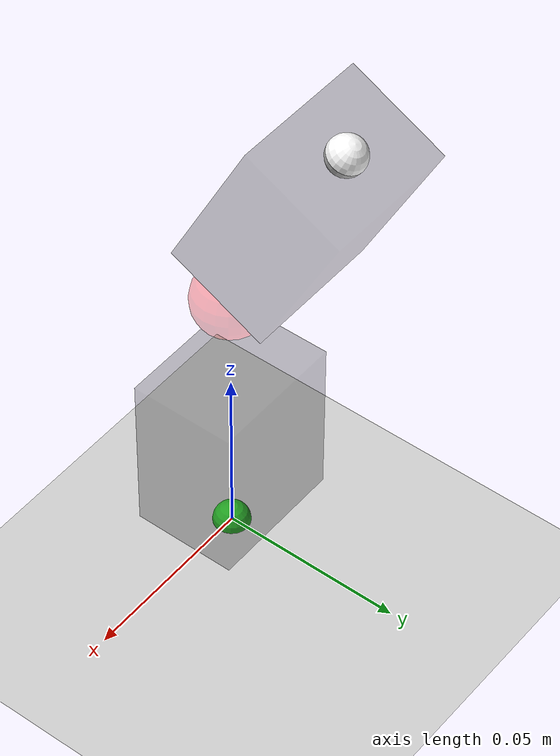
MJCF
<mujoco model="reacher">
	<compiler angle="radian" inertiafromgeom="true" coordinate="local"/>
	<default>
		<joint armature="8e-3" limited="true"/>
		<geom contype="0" rgba="0.7 0.7 0.7 1"/>
		<default class="dyn_motor">
			<geom rgba="0.1 0.1 0.1 .3" size=".019 .0143 .0233"
				  type="box" conaffinity="0" mass="0.082"/>
			<motor ctrllimited="true" ctrlrange="-1 1" />
			<joint axis="1 0 0" type="hinge" damping="0.12"/>
		</default>
	</default>
	<option gravity="0 0 -9.81" integrator="RK4" timestep="0.01"/>
	<worldbody>
		<light diffuse=".5 .5 .4" pos="0 0 3" dir="0 0 -1"/>
		<body>
			<geom type="plane" size="1 1 0.01" rgba=".8 .8 .8 1"/>
		</body>
		<!-- Arm -->
		<geom name="motor0_geom" class="dyn_motor" pos="0 0 .0313"/>
		<body name="angle_body" pos="0 0 0.0430">
			<geom name="angle_geom" pos="0 0 0.036" mass="0.01" rgba="1 0 0 .3" size=".01" type="sphere"/>
			<joint range="-1.2 1.85" name="joint0" class="dyn_motor"/>
			<body name="motor2_body" pos="0 0.0164 0.0681" euler="-0.4725 0 0">
				<joint name="joint1" range="-2 2" class="dyn_motor" />
				<geom name="motor1_geom" class="dyn_motor" pos="0 0 0.0116"/>
				<body name="tip" pos="0 0 .035">
					<geom type="sphere" size=".005" rgba="1 1 1 1" mass="0"/>
				</body>
			</body>
		</body>
		<body name="target" pos="0 0 0">
			<joint armature="0" axis="0 1 0" damping="0.1" limited="true" name="target_y" range="-.2 .2" stiffness="0" type="slide"/>
			<joint armature="0" axis="0 0 1" damping="0.1" limited="true" name="target_z" range="-.2 .2" stiffness="0" type="slide"/>
			<geom conaffinity="0" contype="0" name="target" pos="0 0 0" rgba="0.2 0.9 0.2 1" size=".005" type="sphere"/>
		</body>
	</worldbody>
	<actuator>
		<motor joint="joint0" class="dyn_motor" />
		<motor joint="joint1" class="dyn_motor" />
		<position joint="target_y" kp="2" />
		<position joint="target_z" kp="2" />
	</actuator>
</mujoco>
